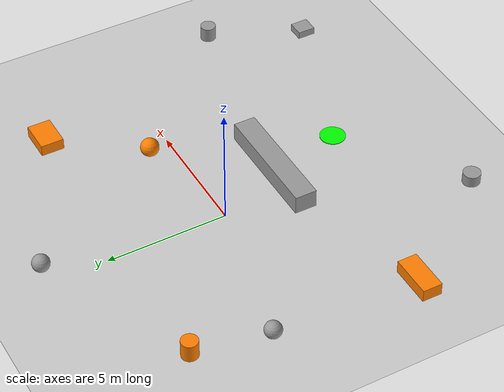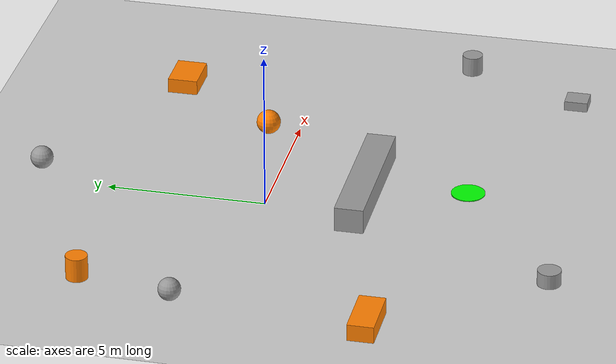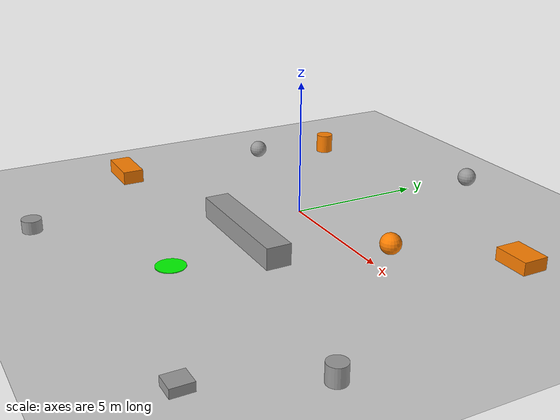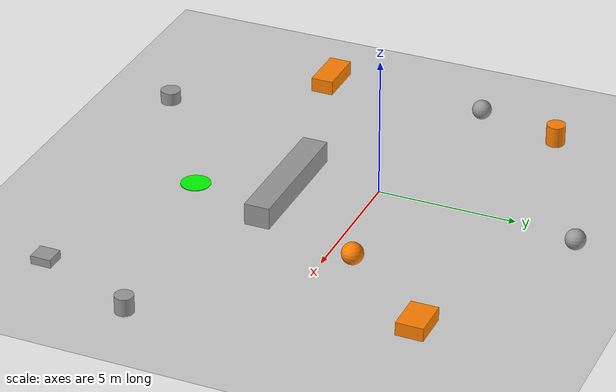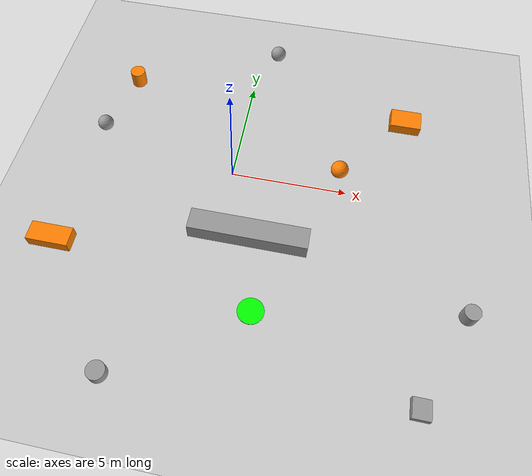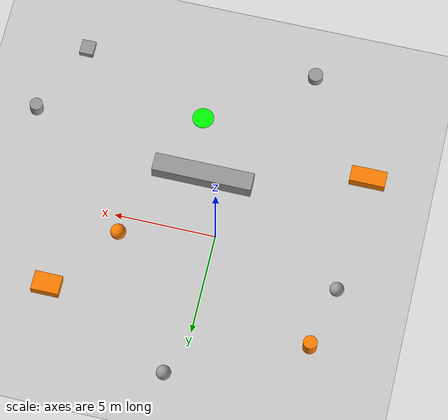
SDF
<sdf version="1.7">
 <world name="default">
  <light name="sun" type="directional">
   <pose>0 0 10 0 -0 0</pose>
   <diffuse>0.8 0.8 0.8 1</diffuse>
   <specular>0.2 0.2 0.2 1</specular>
   <attenuation>
    <range>1000</range>
    <constant>0.9</constant>
    <linear>0.01</linear>
    <quadratic>0.001</quadratic>
   </attenuation>
   <direction>-0.5 0.1 -0.9</direction>
   <spot><inner_angle>0</inner_angle><outer_angle>0</outer_angle><falloff>0</falloff></spot>
  </light>
  <model name="ground_plane">
   <static>1</static>
   <link name="link">
    <collision name="collision">
     <geometry><plane><normal>0 0 1</normal><size>100 100</size></plane></geometry>
     <surface><friction><ode><mu>100</mu><mu2>50</mu2></ode></friction></surface>
    </collision>
    <visual name="visual">
     <cast_shadows>0</cast_shadows>
     <geometry><plane><normal>0 0 1</normal><size>100 100</size></plane></geometry>
     <material>
      <script><uri>file://media/materials/scripts/gazebo.material</uri><name>Gazebo/Grey</name></script>
     </material>
    </visual>
   </link>
  </model>
  <gravity>0 0 -9.8</gravity>
  <magnetic_field>6e-06 2.3e-05 -4.2e-05</magnetic_field>
  <atmosphere type="adiabatic"/>
  <physics type="ode">
   <max_step_size>0.001</max_step_size>
   <real_time_factor>1</real_time_factor>
   <real_time_update_rate>1000</real_time_update_rate>
  </physics>
  <scene><ambient>0.4 0.4 0.4 1</ambient><background>0.7 0.7 0.7 1</background><shadows>1</shadows></scene>
  <spherical_coordinates>
   <surface_model>EARTH_WGS84</surface_model>
   <latitude_deg>0</latitude_deg>
   <longitude_deg>0</longitude_deg>
   <elevation>0</elevation>
   <heading_deg>0</heading_deg>
  </spherical_coordinates>
  <model name="unit_box">
   <pose>1.28816 -2.88848 0.392052 0 -0.000896 2.4e-05</pose>
   <link name="link">
    <inertial>
     <mass>1</mass>
     <inertia>
      <ixx>0.166667</ixx>
      <ixy>0</ixy>
      <ixz>0</ixz>
      <iyy>0.166667</iyy>
      <iyz>0</iyz>
      <izz>0.166667</izz>
     </inertia>
    </inertial>
    <collision name="collision"><geometry><box><size>4.92715 0.909512 0.78852</size></box></geometry></collision>
    <visual name="visual">
     <geometry><box><size>4.92715 0.909512 0.78852</size></box></geometry>
     <material>
      <script><name>Gazebo/Grey</name><uri>file://media/materials/scripts/gazebo.material</uri></script>
     </material>
    </visual>
   </link>
  </model>
  <model name="unit_cylinder">
   <pose>-5.61189 4.45935 0.378775 2e-06 -3e-06 -2e-05</pose>
   <link name="link">
    <inertial>
     <mass>1</mass>
     <inertia><ixx>0.145833</ixx><ixy>0</ixy><ixz>0</ixz><iyy>0.145833</iyy><iyz>0</iyz><izz>0.125</izz></inertia>
    </inertial>
    <collision name="collision">
     <geometry><cylinder><radius>0.339314</radius><length>0.757562</length></cylinder></geometry>
    </collision>
    <visual name="visual">
     <geometry><cylinder><radius>0.339314</radius><length>0.757562</length></cylinder></geometry>
     <material>
      <ambient>1 0.5 0 1</ambient>
      <diffuse>1 0.5 0 1</diffuse>
      <specular>1 0.5 0 1</specular>
      <emissive>1 0.5 0 1</emissive>
     </material>
    </visual>
   </link>
  </model>
  <model name="unit_sphere">
   <pose>0.79065 7.35259 0.358593 0 -0 0</pose>
   <link name="link">
    <inertial>
     <mass>1</mass>
     <inertia><ixx>0.1</ixx><ixy>0</ixy><ixz>0</ixz><iyy>0.1</iyy><iyz>0</iyz><izz>0.1</izz></inertia>
    </inertial>
    <collision name="collision"><geometry><sphere><radius>0.358593</radius></sphere></geometry></collision>
    <visual name="visual">
     <geometry><sphere><radius>0.358593</radius></sphere></geometry>
     <material>
      <script><name>Gazebo/Grey</name><uri>file://media/materials/scripts/gazebo.material</uri></script>
     </material>
    </visual>
   </link>
  </model>
  <model name="unit_box_0">
   <pose>-6.57357 -4.58141 0.263004 0 0 -1.6e-05</pose>
   <link name="link">
    <inertial>
     <mass>1</mass>
     <inertia>
      <ixx>0.166667</ixx>
      <ixy>0</ixy>
      <ixz>0</ixz>
      <iyy>0.166667</iyy>
      <iyz>0</iyz>
      <izz>0.166667</izz>
     </inertia>
    </inertial>
    <collision name="collision"><geometry><box><size>1.75672 0.813235 0.526008</size></box></geometry></collision>
    <visual name="visual">
     <geometry><box><size>1.75672 0.813235 0.526008</size></box></geometry>
     <material>
      <ambient>1 0.5 0 1</ambient>
      <diffuse>1 0.5 0 1</diffuse>
      <specular>1 0.5 0 1</specular>
      <emissive>1 0.5 0 1</emissive>
     </material>
    </visual>
   </link>
  </model>
  <model name="unit_box_1">
   <pose>8.47607 -8.35958 0.15357 0 0 -0.000291</pose>
   <link name="link">
    <inertial>
     <mass>1</mass>
     <inertia>
      <ixx>0.166667</ixx>
      <ixy>0</ixy>
      <ixz>0</ixz>
      <iyy>0.166667</iyy>
      <iyz>0</iyz>
      <izz>0.166667</izz>
     </inertia>
    </inertial>
    <collision name="collision">
     <geometry><box><size>0.690884 0.744027 0.307141</size></box></geometry>
    </collision>
    <visual name="visual">
     <geometry><box><size>0.690884 0.744027 0.307141</size></box></geometry>
     <material>
      <script><name>Gazebo/Grey</name><uri>file://media/materials/scripts/gazebo.material</uri></script>
     </material>
    </visual>
   </link>
  </model>
  <model name="unit_sphere_0">
   <pose>4.58036 0.944566 0.383762 0 -0 0</pose>
   <link name="link">
    <inertial>
     <mass>1</mass>
     <inertia><ixx>0.1</ixx><ixy>0</ixy><ixz>0</ixz><iyy>0.1</iyy><iyz>0</iyz><izz>0.1</izz></inertia>
    </inertial>
    <collision name="collision"><geometry><sphere><radius>0.383762</radius></sphere></geometry></collision>
    <visual name="visual">
     <geometry><sphere><radius>0.383762</radius></sphere></geometry>
     <material>
      <ambient>1 0.5 0 1</ambient>
      <diffuse>1 0.5 0 1</diffuse>
      <specular>1 0.5 0 1</specular>
      <emissive>1 0.5 0 1</emissive>
     </material>
    </visual>
   </link>
  </model>
  <model name="unit_cylinder_0">
   <pose>-2.93567 -9.37497 0.236337 -0 -0 -1e-06</pose>
   <link name="link">
    <inertial>
     <mass>1</mass>
     <inertia><ixx>0.145833</ixx><ixy>0</ixy><ixz>0</ixz><iyy>0.145833</iyy><iyz>0</iyz><izz>0.125</izz></inertia>
    </inertial>
    <collision name="collision">
     <geometry><cylinder><radius>0.363785</radius><length>0.472674</length></cylinder></geometry>
    </collision>
    <visual name="visual">
     <geometry><cylinder><radius>0.363785</radius><length>0.472674</length></cylinder></geometry>
     <material>
      <script><name>Gazebo/Grey</name><uri>file://media/materials/scripts/gazebo.material</uri></script>
     </material>
    </visual>
   </link>
  </model>
  <model name="unit_cylinder_1">
   <pose>2 -6 0.01402 0 -0 0</pose>
   <link name="link">
    <inertial>
     <mass>1</mass>
     <inertia><ixx>0.145833</ixx><ixy>0</ixy><ixz>0</ixz><iyy>0.145833</iyy><iyz>0</iyz><izz>0.125</izz></inertia>
    </inertial>
    <collision name="collision">
     <geometry><cylinder><radius>0.53358</radius><length>0.028059</length></cylinder></geometry>
     <surface><friction><ode><mu>0</mu><mu2>0</mu2></ode></friction></surface>
    </collision>
    <visual name="visual">
     <geometry><cylinder><radius>0.53358</radius><length>0.028059</length></cylinder></geometry>
     <material>
      <ambient>0 1 0 1</ambient>
      <diffuse>0 1 0 1</diffuse>
      <specular>0 1 0 1</specular>
      <emissive>0 1 0 1</emissive>
     </material>
    </visual>
    <enable_wind>1</enable_wind>
   </link>
   <enable_wind>1</enable_wind>
  </model>
  <model name="unit_sphere_1">
   <pose>-6.27117 1.43867 0.349875 0 -0 0</pose>
   <link name="link">
    <inertial>
     <mass>1</mass>
     <inertia><ixx>0.1</ixx><ixy>0</ixy><ixz>0</ixz><iyy>0.1</iyy><iyz>0</iyz><izz>0.1</izz></inertia>
    </inertial>
    <collision name="collision"><geometry><sphere><radius>0.349874</radius></sphere></geometry></collision>
    <visual name="visual">
     <geometry><sphere><radius>0.349874</radius></sphere></geometry>
     <material>
      <script><name>Gazebo/Grey</name><uri>file://media/materials/scripts/gazebo.material</uri></script>
     </material>
    </visual>
   </link>
  </model>
  <model name="unit_cylinder_2">
   <pose>10.1209 -4.61607 0.315032 0 0 -0.000139</pose>
   <link name="link">
    <inertial>
     <mass>1</mass>
     <inertia><ixx>0.145833</ixx><ixy>0</ixy><ixz>0</ixz><iyy>0.145833</iyy><iyz>0</iyz><izz>0.125</izz></inertia>
    </inertial>
    <collision name="collision">
     <geometry><cylinder><radius>0.325873</radius><length>0.630072</length></cylinder></geometry>
    </collision>
    <visual name="visual">
     <geometry><cylinder><radius>0.325873</radius><length>0.630072</length></cylinder></geometry>
     <material>
      <script><name>Gazebo/Grey</name><uri>file://media/materials/scripts/gazebo.material</uri></script>
     </material>
    </visual>
   </link>
  </model>
  <model name="unit_box_2">
   <pose>7.26004 4.27796 0.239029 0 -0 3e-06</pose>
   <link name="link">
    <inertial>
     <mass>1</mass>
     <inertia>
      <ixx>0.166667</ixx>
      <ixy>0</ixy>
      <ixz>0</ixz>
      <iyy>0.166667</iyy>
      <iyz>0</iyz>
      <izz>0.166667</izz>
     </inertia>
    </inertial>
    <collision name="collision"><geometry><box><size>1.35315 0.958375 0.478058</size></box></geometry></collision>
    <visual name="visual">
     <geometry><box><size>1.35315 0.958375 0.478058</size></box></geometry>
     <material>
      <ambient>1 0.5 0 1</ambient>
      <diffuse>1 0.5 0 1</diffuse>
      <specular>1 0.5 0 1</specular>
      <emissive>1 0.5 0 1</emissive>
     </material>
    </visual>
   </link>
  </model>
 </world>
</sdf>
